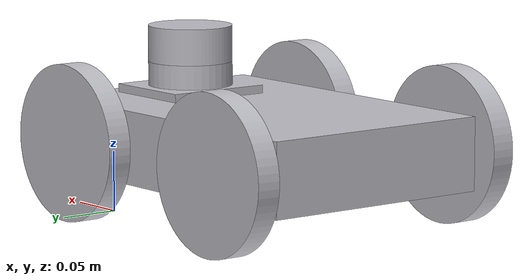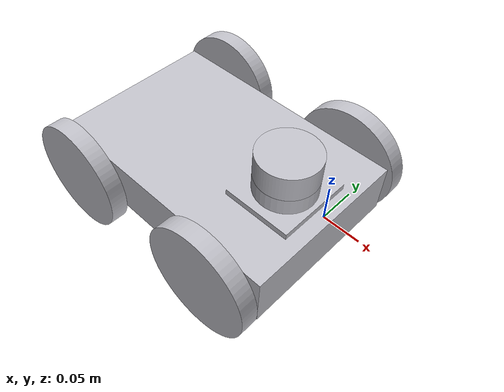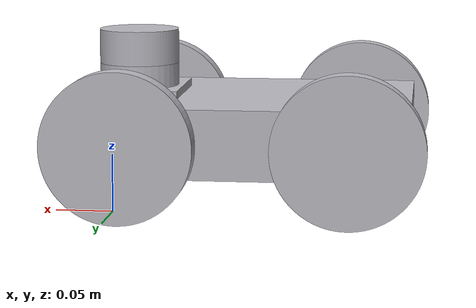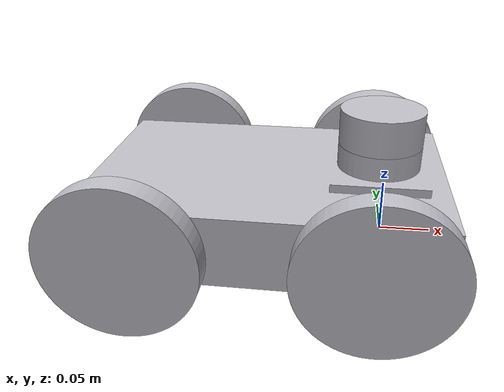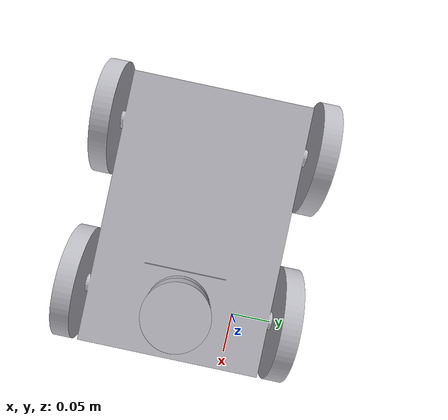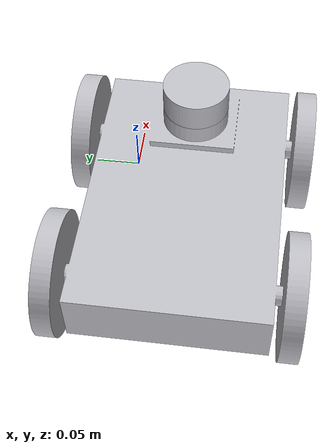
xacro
<?xml version="1.0" ?>
<robot name="amr" xmlns:xacro="http://www.ros.org/wiki/xacro">

<xacro:include filename="$(find amr_description)/urdf/materials.xacro" />
<xacro:include filename="$(find amr_description)/urdf/amr.trans" />
<xacro:include filename="$(find amr_description)/urdf/amr.gazebo" />
<link name="base_link">
  <inertial>
    <origin xyz="-0.10140304112172575 -0.07 0.06559338049633992" rpy="0 0 0"/>
    <mass value="3.972072439042729"/>
    <inertia ixx="0.014301" iyy="0.031378" izz="0.042871" ixy="0.0" iyz="0.0" ixz="-0.000459"/>
  </inertial>
  <visual>
    <origin xyz="0 0 0" rpy="0 0 0"/>
    <geometry>
      <mesh filename="package://amr_description/meshes/base_link.stl" scale="0.001 0.001 0.001"/>
    </geometry>
    <material name="silver"/>
  </visual>
  <collision>
    <origin xyz="0 0 0" rpy="0 0 0"/>
    <geometry>
      <mesh filename="package://amr_description/meshes/base_link.stl" scale="0.001 0.001 0.001"/>
    </geometry>
  </collision>
</link>

<link name="left_wheel_f_1">
  <inertial>
    <origin xyz="4.983650736169881e-07 0.010000000000000016 1.4282942839560775e-07" rpy="0 0 0"/>
    <mass value="0.24157045638565464"/>
    <inertia ixx="0.000258" iyy="0.000499" izz="0.000258" ixy="0.0" iyz="0.0" ixz="0.0"/>
  </inertial>
  <visual>
    <origin xyz="0.012881 -0.038 -0.064297" rpy="0 0 0"/>
    <geometry>
      <mesh filename="package://amr_description/meshes/left_wheel_f_1.stl" scale="0.001 0.001 0.001"/>
    </geometry>
    <material name="silver"/>
  </visual>
  <collision>
    <origin xyz="0.012881 -0.038 -0.064297" rpy="0 0 0"/>
    <geometry>
      <mesh filename="package://amr_description/meshes/left_wheel_f_1.stl" scale="0.001 0.001 0.001"/>
    </geometry>
  </collision>
</link>

<link name="left_wheel_b_1">
  <inertial>
    <origin xyz="-1.7951529185378234e-07 0.010000000000000044 1.4282942842336332e-07" rpy="0 0 0"/>
    <mass value="0.2415704563856548"/>
    <inertia ixx="0.000258" iyy="0.000499" izz="0.000258" ixy="0.0" iyz="0.0" ixz="0.0"/>
  </inertial>
  <visual>
    <origin xyz="0.204556 -0.038 -0.064297" rpy="0 0 0"/>
    <geometry>
      <mesh filename="package://amr_description/meshes/left_wheel_b_1.stl" scale="0.001 0.001 0.001"/>
    </geometry>
    <material name="silver"/>
  </visual>
  <collision>
    <origin xyz="0.204556 -0.038 -0.064297" rpy="0 0 0"/>
    <geometry>
      <mesh filename="package://amr_description/meshes/left_wheel_b_1.stl" scale="0.001 0.001 0.001"/>
    </geometry>
  </collision>
</link>

<link name="right_wheel_f_1">
  <inertial>
    <origin xyz="4.983650735458645e-07 -0.010000000000000064 1.4282942835397439e-07" rpy="0 0 0"/>
    <mass value="0.24157045638565475"/>
    <inertia ixx="0.000258" iyy="0.000499" izz="0.000258" ixy="0.0" iyz="-0.0" ixz="-0.0"/>
  </inertial>
  <visual>
    <origin xyz="0.012881 0.178 -0.064297" rpy="0 0 0"/>
    <geometry>
      <mesh filename="package://amr_description/meshes/right_wheel_f_1.stl" scale="0.001 0.001 0.001"/>
    </geometry>
    <material name="silver"/>
  </visual>
  <collision>
    <origin xyz="0.012881 0.178 -0.064297" rpy="0 0 0"/>
    <geometry>
      <mesh filename="package://amr_description/meshes/right_wheel_f_1.stl" scale="0.001 0.001 0.001"/>
    </geometry>
  </collision>
</link>

<link name="right_wheel_b_1">
  <inertial>
    <origin xyz="-1.7951529188153792e-07 -0.009999999999999953 1.4282942838172996e-07" rpy="0 0 0"/>
    <mass value="0.24157045638565475"/>
    <inertia ixx="0.000258" iyy="0.000499" izz="0.000258" ixy="-0.0" iyz="0.0" ixz="-0.0"/>
  </inertial>
  <visual>
    <origin xyz="0.204556 0.178 -0.064297" rpy="0 0 0"/>
    <geometry>
      <mesh filename="package://amr_description/meshes/right_wheel_b_1.stl" scale="0.001 0.001 0.001"/>
    </geometry>
    <material name="silver"/>
  </visual>
  <collision>
    <origin xyz="0.204556 0.178 -0.064297" rpy="0 0 0"/>
    <geometry>
      <mesh filename="package://amr_description/meshes/right_wheel_b_1.stl" scale="0.001 0.001 0.001"/>
    </geometry>
  </collision>
</link>

<link name="lidar_1">
  <inertial>
    <origin xyz="-3.3028358275427605e-07 0.0 0.015000142829428367" rpy="0 0 0"/>
    <mass value="0.12238074182059036"/>
    <inertia ixx="4.7e-05" iyy="4.7e-05" izz="7.5e-05" ixy="-0.0" iyz="0.0" ixz="-0.0"/>
  </inertial>
  <visual>
    <origin xyz="0.012166 0.07 -0.121297" rpy="0 0 0"/>
    <geometry>
      <mesh filename="package://amr_description/meshes/lidar_1.stl" scale="0.001 0.001 0.001"/>
    </geometry>
    <material name="silver"/>
  </visual>
  <collision>
    <origin xyz="0.012166 0.07 -0.121297" rpy="0 0 0"/>
    <geometry>
      <mesh filename="package://amr_description/meshes/lidar_1.stl" scale="0.001 0.001 0.001"/>
    </geometry>
  </collision>
</link>

<joint name="Rev1" type="continuous">
  <origin xyz="-0.012881 0.038 0.064297" rpy="0 0 0"/>
  <parent link="base_link"/>
  <child link="left_wheel_f_1"/>
  <axis xyz="0.0 1.0 0.0"/>
</joint>

<joint name="Rev2" type="continuous">
  <origin xyz="-0.204556 0.038 0.064297" rpy="0 0 0"/>
  <parent link="base_link"/>
  <child link="left_wheel_b_1"/>
  <axis xyz="0.0 1.0 0.0"/>
</joint>

<joint name="Rev3" type="continuous">
  <origin xyz="-0.012881 -0.178 0.064297" rpy="0 0 0"/>
  <parent link="base_link"/>
  <child link="right_wheel_f_1"/>
  <axis xyz="-0.0 -1.0 0.0"/>
</joint>

<joint name="Rev4" type="continuous">
  <origin xyz="-0.204556 -0.178 0.064297" rpy="0 0 0"/>
  <parent link="base_link"/>
  <child link="right_wheel_b_1"/>
  <axis xyz="-0.0 1.0 0.0"/>
</joint>

<joint name="Rigid5" type="fixed">
  <origin xyz="-0.012166 -0.07 0.121297" rpy="0 0 0"/>
  <parent link="base_link"/>
  <child link="lidar_1"/>
</joint>

</robot>

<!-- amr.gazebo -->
<robot name="amr" xmlns:xacro="http://www.ros.org/wiki/xacro" >

<xacro:property name="body_color" value="Gazebo/Silver" />

<gazebo>
  <plugin name="control" filename="libgazebo_ros_control.so"/>
</gazebo>
<gazebo reference="base_link">
  <material>${body_color}</material>
  <mu1>0.1</mu1>
  <mu2>0.1</mu2>
  <selfCollide>true</selfCollide>
  <gravity>true</gravity>
</gazebo>

<gazebo reference="left_wheel_f_1">
  <material>${body_color}</material>
  <mu1>0.2</mu1>
  <mu2>0.2</mu2>
  <selfCollide>true</selfCollide>
</gazebo>

<gazebo reference="left_wheel_b_1">
  <material>${body_color}</material>
  <mu1>0.9</mu1>
  <mu2>0.9</mu2>
  <selfCollide>true</selfCollide>
</gazebo>

<gazebo reference="right_wheel_f_1">
  <material>${body_color}</material>
  <mu1>0.2</mu1>
  <mu2>0.2</mu2>
  <selfCollide>true</selfCollide>
</gazebo>

<gazebo reference="right_wheel_b_1">
  <material>${body_color}</material>
  <mu1>0.9</mu1>
  <mu2>0.9</mu2>
  <selfCollide>true</selfCollide>
</gazebo>

<gazebo reference="lidar_1">
  <material>${body_color}</material>
  <mu1>0.2</mu1>
  <mu2>0.2</mu2>
  <selfCollide>true</selfCollide>
</gazebo>
<gazebo>
  <plugin name="differential_drive_controller" filename="libgazebo_ros_diff_drive.so">

    <!-- Plugin update rate in Hz -->
    <updateRate>100</updateRate>

    <!-- Name of left joint, defaults to `left_joint` -->
    <leftJoint>Rev2</leftJoint>

    <!-- Name of right joint, defaults to `right_joint` -->
    <rightJoint>Rev4</rightJoint>

    <!-- The distance from the center of one wheel to the other, in meters, defaults to 0.34 m -->
    <wheelSeparation>0.34</wheelSeparation>

    <!-- Diameter of the wheels, in meters, defaults to 0.15 m -->
    <wheelDiameter>0.15</wheelDiameter>

    <!-- Wheel acceleration, in rad/s^2, defaults to 0.0 rad/s^2 -->
    <wheelAcceleration>1.0</wheelAcceleration>

    <!-- Maximum torque which the wheels can produce, in Nm, defaults to 5 Nm -->
    <wheelTorque>50</wheelTorque>

    <!-- Topic to receive geometry_msgs/Twist message commands, defaults to `cmd_vel` -->
    <commandTopic>cmd_vel</commandTopic>

    <!-- Topic to publish nav_msgs/Odometry messages, defaults to `odom` -->
    <odometryTopic>odom</odometryTopic>

    <!-- Odometry frame, defaults to `odom` -->
    <odometryFrame>odom</odometryFrame>

    <!-- Robot frame to calculate odometry from, defaults to `base_footprint` -->
    <robotBaseFrame>base_link</robotBaseFrame>

    <!-- Odometry source, 0 for ENCODER, 1 for WORLD, defaults to WORLD -->
    <odometrySource>1</odometrySource>

    <!-- Set to true to publish transforms for the wheel links, defaults to false -->
    <publishWheelTF>false</publishWheelTF>

    <!-- Set to true to publish transforms for the odometry, defaults to true -->
    <publishOdom>true</publishOdom>

    <!-- Set to true to publish sensor_msgs/JointState on /joint_states for the wheel joints, defaults to false -->
    <publishWheelJointState>false</publishWheelJointState>

    <!-- Set to true to swap right and left wheels, defaults to true -->
    <legacyMode>false</legacyMode>
  </plugin>
</gazebo>
   <!-- hokuyo -->
  <gazebo reference="lidar_1">
    <sensor type="ray" name="head_hokuyo_sensor">
      <pose>0 0 0 0 0 0</pose>
      <visualize>true</visualize>
      <update_rate>40</update_rate>
      <ray>
        <scan>
          <horizontal>
            <samples>720</samples>
            <resolution>1</resolution>
            <min_angle>-1.570796</min_angle>
            <max_angle>1.570796</max_angle>
          </horizontal>
        </scan>
        <range>
          <min>0.10</min>
          <max>30.0</max>
          <resolution>0.01</resolution>
        </range>
        <noise>
          <type>gaussian</type>
          <mean>0.0</mean>
          <stddev>0.01</stddev>
        </noise>
      </ray>
      <plugin name="gazebo_ros_head_hokuyo_controller" filename="libgazebo_ros_laser.so">
        <topicName>/scan</topicName>
        <frameName>lidar_1</frameName>
      </plugin>
    </sensor>
  </gazebo>
</robot>
